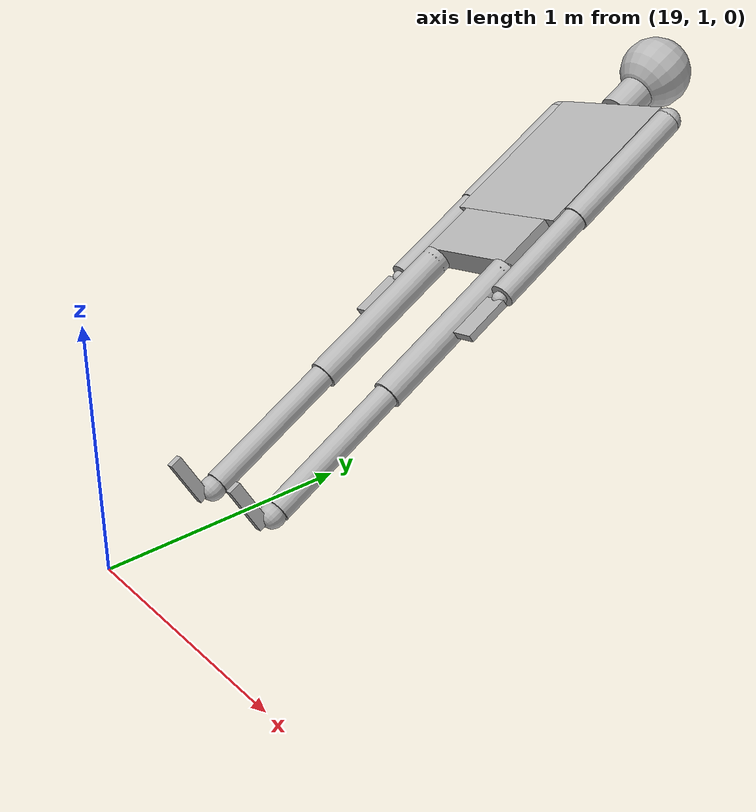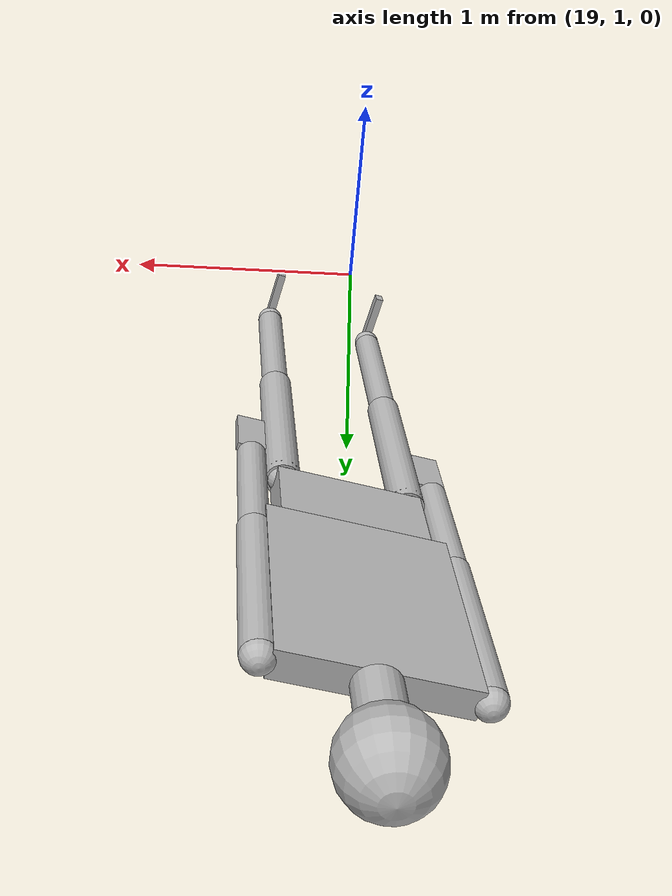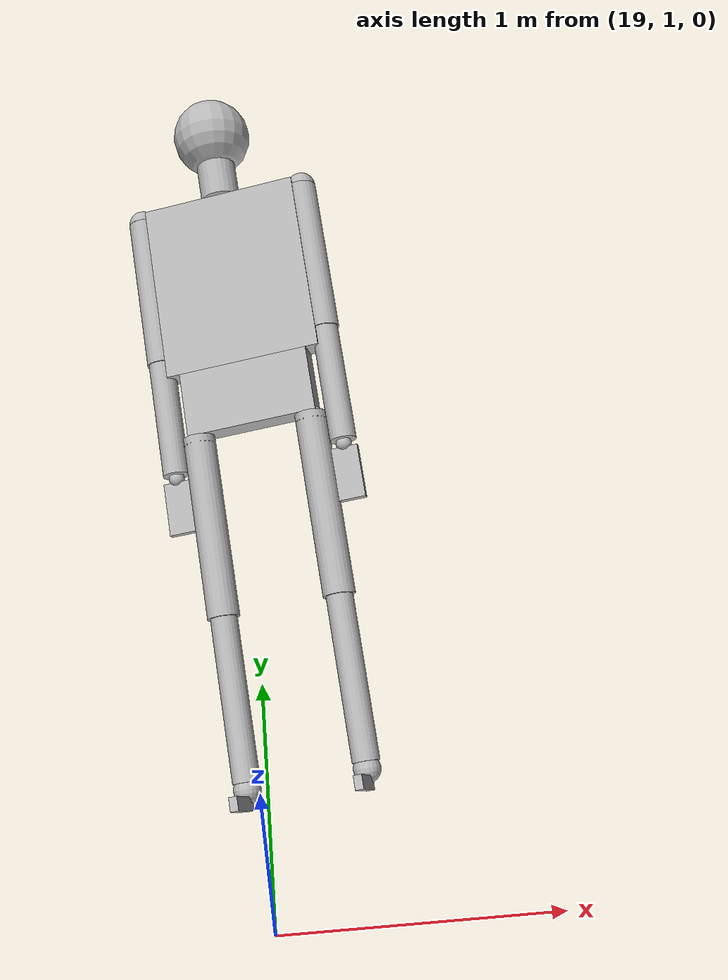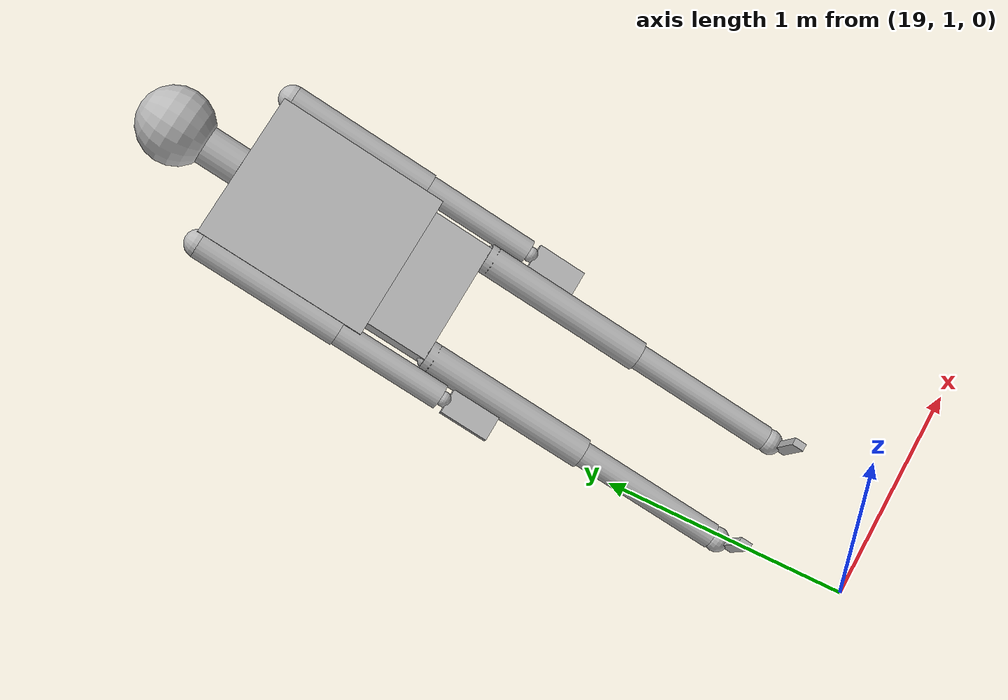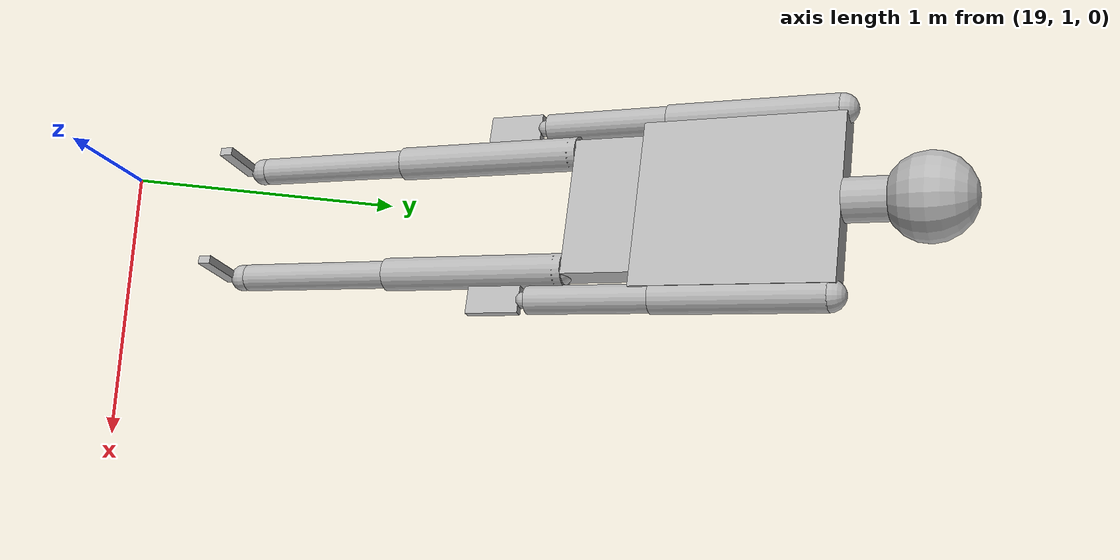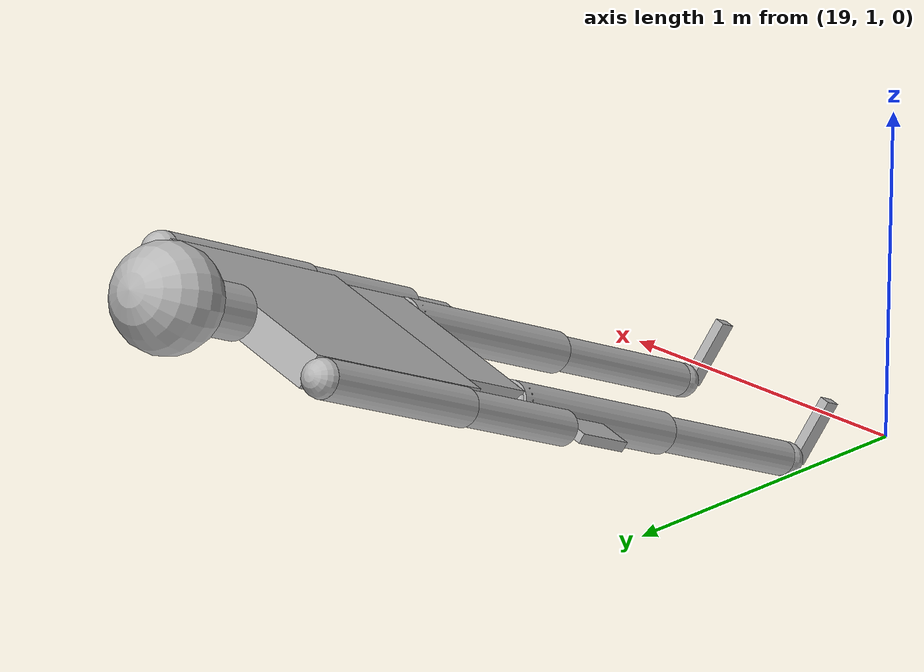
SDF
<sdf version="1.7">
 <world name="world_demo">
  <model name="ground_plane">
   <static>1</static>
   <link name="link">
    <collision name="collision">
     <geometry><plane><normal>0 0 1</normal><size>1 1</size></plane></geometry>
    </collision>
    <inertial>
     <mass>1</mass>
     <inertia><ixx>1</ixx><ixy>0</ixy><ixz>0</ixz><iyy>1</iyy><iyz>0</iyz><izz>1</izz></inertia>
    </inertial>
   </link>
  </model>
  <model name="ragdoll_1">
   <pose>19.0376 2.68653 0.724107 0.524953 -1.05567 -2.07111</pose>
   <link name="hip">
    <inertial>
     <inertia><ixx>0.1</ixx><ixy>0</ixy><ixz>0</ixz><iyy>0.1</iyy><iyz>0</iyz><izz>0.1</izz></inertia>
     <mass>10</mass>
    </inertial>
    <collision name="hip_geom">
     <pose>0 0 0.125 0 -0 0</pose>
     <geometry><box><size>0.1 0.5 0.25</size></box></geometry>
     <surface>
      <friction><ode><mu>-1</mu><mu2>-1</mu2><fdir1>0 0 0</fdir1><slip1>0</slip1><slip2>0</slip2></ode></friction>
      <bounce><restitution_coefficient>0</restitution_coefficient><threshold>100000</threshold></bounce>
      <contact>
       <ode>
        <soft_cfm>0</soft_cfm>
        <soft_erp>0.2</soft_erp>
        <kp>1e+12</kp>
        <kd>1</kd>
        <max_vel>0</max_vel>
        <min_depth>0.001</min_depth>
       </ode>
      </contact>
     </surface>
    </collision>
    <visual name="hip_geom_visual">
     <pose>0 0 0.125 0 -0 0</pose>
     <geometry><box><size>0.1 0.5 0.25</size></box></geometry>
    </visual>
    <gravity>0</gravity>
   </link>
   <link name="l_thigh_pan">
    <pose>0 0.22 0 0 -0 0</pose>
    <inertial>
     <inertia><ixx>0.01</ixx><ixy>0</ixy><ixz>0</ixz><iyy>0.01</iyy><iyz>0</iyz><izz>0.01</izz></inertia>
     <mass>1</mass>
    </inertial>
    <collision name="l_thigh_pan_geom">
     <pose>0 0 -0.03 0 -0 0</pose>
     <geometry><sphere><radius>0.06</radius></sphere></geometry>
     <surface>
      <friction><ode><mu>-1</mu><mu2>-1</mu2><fdir1>0 0 0</fdir1><slip1>0</slip1><slip2>0</slip2></ode></friction>
      <bounce><restitution_coefficient>0</restitution_coefficient><threshold>100000</threshold></bounce>
      <contact>
       <ode>
        <soft_cfm>0</soft_cfm>
        <soft_erp>0.2</soft_erp>
        <kp>1e+12</kp>
        <kd>1</kd>
        <max_vel>0</max_vel>
        <min_depth>0.001</min_depth>
       </ode>
      </contact>
     </surface>
    </collision>
    <visual name="l_thigh_pan_geom_visual">
     <pose>0 0 -0.03 0 -0 0</pose>
     <geometry><sphere><radius>0.06</radius></sphere></geometry>
    </visual>
    <gravity>0</gravity>
   </link>
   <link name="l_thigh_lift">
    <pose>0 0.22 0 0 -0 0</pose>
    <inertial>
     <inertia><ixx>0.05</ixx><ixy>0</ixy><ixz>0</ixz><iyy>0.05</iyy><iyz>0</iyz><izz>0.05</izz></inertia>
     <mass>5</mass>
    </inertial>
    <collision name="l_thigh_lift_geom">
     <pose>0 0 -0.35 0 -0 0</pose>
     <geometry><cylinder><radius>0.06</radius><length>0.7</length></cylinder></geometry>
     <surface>
      <friction><ode><mu>-1</mu><mu2>-1</mu2><fdir1>0 0 0</fdir1><slip1>0</slip1><slip2>0</slip2></ode></friction>
      <bounce><restitution_coefficient>0</restitution_coefficient><threshold>100000</threshold></bounce>
      <contact>
       <ode>
        <soft_cfm>0</soft_cfm>
        <soft_erp>0.2</soft_erp>
        <kp>1e+12</kp>
        <kd>1</kd>
        <max_vel>0</max_vel>
        <min_depth>0.001</min_depth>
       </ode>
      </contact>
     </surface>
    </collision>
    <visual name="l_thigh_lift_geom_visual">
     <pose>0 0 -0.35 0 -0 0</pose>
     <geometry><cylinder><radius>0.06</radius><length>0.7</length></cylinder></geometry>
    </visual>
    <gravity>0</gravity>
   </link>
   <link name="l_calf">
    <pose>0 0.22 -0.7 0 -0 0</pose>
    <inertial>
     <inertia><ixx>0.02</ixx><ixy>0</ixy><ixz>0</ixz><iyy>0.02</iyy><iyz>0</iyz><izz>0.02</izz></inertia>
     <mass>2</mass>
    </inertial>
    <collision name="l_calf_geom">
     <pose>0 0 -0.3 0 -0 0</pose>
     <geometry><cylinder><radius>0.05</radius><length>0.6</length></cylinder></geometry>
     <surface>
      <friction><ode><mu>-1</mu><mu2>-1</mu2><fdir1>0 0 0</fdir1><slip1>0</slip1><slip2>0</slip2></ode></friction>
      <bounce><restitution_coefficient>0</restitution_coefficient><threshold>100000</threshold></bounce>
      <contact>
       <ode>
        <soft_cfm>0</soft_cfm>
        <soft_erp>0.2</soft_erp>
        <kp>1e+12</kp>
        <kd>1</kd>
        <max_vel>0</max_vel>
        <min_depth>0.001</min_depth>
       </ode>
      </contact>
     </surface>
    </collision>
    <visual name="l_calf_geom_visual">
     <pose>0 0 -0.3 0 -0 0</pose>
     <geometry><cylinder><radius>0.05</radius><length>0.6</length></cylinder></geometry>
    </visual>
    <gravity>0</gravity>
   </link>
   <link name="l_ankle">
    <pose>0 0.22 -1.325 0 -0 0</pose>
    <inertial>
     <inertia><ixx>0.01</ixx><ixy>0</ixy><ixz>0</ixz><iyy>0.01</iyy><iyz>0</iyz><izz>0.01</izz></inertia>
     <mass>1</mass>
    </inertial>
    <collision name="l_ankle_geom">
     <geometry><sphere><radius>0.05</radius></sphere></geometry>
     <surface>
      <friction><ode><mu>-1</mu><mu2>-1</mu2><fdir1>0 0 0</fdir1><slip1>0</slip1><slip2>0</slip2></ode></friction>
      <bounce><restitution_coefficient>0</restitution_coefficient><threshold>100000</threshold></bounce>
      <contact>
       <ode>
        <soft_cfm>0</soft_cfm>
        <soft_erp>0.2</soft_erp>
        <kp>1e+12</kp>
        <kd>1</kd>
        <max_vel>0</max_vel>
        <min_depth>0.001</min_depth>
       </ode>
      </contact>
     </surface>
    </collision>
    <visual name="l_ankle_geom_visual"><geometry><sphere><radius>0.05</radius></sphere></geometry></visual>
    <gravity>0</gravity>
   </link>
   <link name="l_foot">
    <pose>0 0.22 -1.35 0 -0 0</pose>
    <inertial>
     <pose>0.1 0 0 0 -0 0</pose>
     <inertia><ixx>0.01</ixx><ixy>0</ixy><ixz>0</ixz><iyy>0.01</iyy><iyz>0</iyz><izz>0.01</izz></inertia>
     <mass>1</mass>
    </inertial>
    <collision name="l_foot_geom">
     <pose>0.1 0 -0.025 0 -0 0</pose>
     <geometry><box><size>0.2 0.03 0.05</size></box></geometry>
     <surface>
      <friction><ode><mu>-1</mu><mu2>-1</mu2><fdir1>0 0 0</fdir1><slip1>0</slip1><slip2>0</slip2></ode></friction>
      <bounce><restitution_coefficient>0</restitution_coefficient><threshold>100000</threshold></bounce>
      <contact>
       <ode>
        <soft_cfm>0</soft_cfm>
        <soft_erp>0.2</soft_erp>
        <kp>1e+12</kp>
        <kd>1</kd>
        <max_vel>0</max_vel>
        <min_depth>0.001</min_depth>
       </ode>
      </contact>
     </surface>
    </collision>
    <visual name="l_foot_geom_visual">
     <pose>0.1 0 -0.025 0 -0 0</pose>
     <geometry><box><size>0.2 0.03 0.05</size></box></geometry>
    </visual>
   </link>
   <link name="r_thigh_pan">
    <pose>0 -0.22 0 0 -0 0</pose>
    <inertial>
     <inertia><ixx>0.01</ixx><ixy>0</ixy><ixz>0</ixz><iyy>0.01</iyy><iyz>0</iyz><izz>0.01</izz></inertia>
     <mass>1</mass>
    </inertial>
    <collision name="r_thigh_pan_geom">
     <pose>0 0 -0.03 0 -0 0</pose>
     <geometry><sphere><radius>0.06</radius></sphere></geometry>
     <surface>
      <friction><ode><mu>-1</mu><mu2>-1</mu2><fdir1>0 0 0</fdir1><slip1>0</slip1><slip2>0</slip2></ode></friction>
      <bounce><restitution_coefficient>0</restitution_coefficient><threshold>100000</threshold></bounce>
      <contact>
       <ode>
        <soft_cfm>0</soft_cfm>
        <soft_erp>0.2</soft_erp>
        <kp>1e+12</kp>
        <kd>1</kd>
        <max_vel>0</max_vel>
        <min_depth>0.001</min_depth>
       </ode>
      </contact>
     </surface>
    </collision>
    <visual name="r_thigh_pan_geom_visual">
     <pose>0 0 -0.03 0 -0 0</pose>
     <geometry><sphere><radius>0.06</radius></sphere></geometry>
    </visual>
    <gravity>0</gravity>
   </link>
   <link name="r_thigh_lift">
    <pose>0 -0.22 0 0 -0 0</pose>
    <inertial>
     <inertia><ixx>0.05</ixx><ixy>0</ixy><ixz>0</ixz><iyy>0.05</iyy><iyz>0</iyz><izz>0.05</izz></inertia>
     <mass>5</mass>
    </inertial>
    <collision name="r_thigh_lift_geom">
     <pose>0 0 -0.35 0 -0 0</pose>
     <geometry><cylinder><radius>0.06</radius><length>0.7</length></cylinder></geometry>
     <surface>
      <friction><ode><mu>-1</mu><mu2>-1</mu2><fdir1>0 0 0</fdir1><slip1>0</slip1><slip2>0</slip2></ode></friction>
      <bounce><restitution_coefficient>0</restitution_coefficient><threshold>100000</threshold></bounce>
      <contact>
       <ode>
        <soft_cfm>0</soft_cfm>
        <soft_erp>0.2</soft_erp>
        <kp>1e+12</kp>
        <kd>1</kd>
        <max_vel>0</max_vel>
        <min_depth>0.001</min_depth>
       </ode>
      </contact>
     </surface>
    </collision>
    <visual name="r_thigh_lift_geom_visual">
     <pose>0 0 -0.35 0 -0 0</pose>
     <geometry><cylinder><radius>0.06</radius><length>0.7</length></cylinder></geometry>
    </visual>
    <gravity>0</gravity>
   </link>
   <link name="r_calf">
    <pose>0 -0.22 -0.7 0 -0 0</pose>
    <inertial>
     <inertia><ixx>0.02</ixx><ixy>0</ixy><ixz>0</ixz><iyy>0.02</iyy><iyz>0</iyz><izz>0.02</izz></inertia>
     <mass>2</mass>
    </inertial>
    <collision name="r_calf_geom">
     <pose>0 0 -0.3 0 -0 0</pose>
     <geometry><cylinder><radius>0.05</radius><length>0.6</length></cylinder></geometry>
     <surface>
      <friction><ode><mu>-1</mu><mu2>-1</mu2><fdir1>0 0 0</fdir1><slip1>0</slip1><slip2>0</slip2></ode></friction>
      <bounce><restitution_coefficient>0</restitution_coefficient><threshold>100000</threshold></bounce>
      <contact>
       <ode>
        <soft_cfm>0</soft_cfm>
        <soft_erp>0.2</soft_erp>
        <kp>1e+12</kp>
        <kd>1</kd>
        <max_vel>0</max_vel>
        <min_depth>0.001</min_depth>
       </ode>
      </contact>
     </surface>
    </collision>
    <visual name="r_calf_geom_visual">
     <pose>0 0 -0.3 0 -0 0</pose>
     <geometry><cylinder><radius>0.05</radius><length>0.6</length></cylinder></geometry>
    </visual>
    <gravity>0</gravity>
   </link>
   <link name="r_ankle">
    <pose>0 -0.22 -1.325 0 -0 0</pose>
    <inertial>
     <inertia><ixx>0.01</ixx><ixy>0</ixy><ixz>0</ixz><iyy>0.01</iyy><iyz>0</iyz><izz>0.01</izz></inertia>
     <mass>1</mass>
    </inertial>
    <collision name="r_ankle_geom">
     <geometry><sphere><radius>0.05</radius></sphere></geometry>
     <surface>
      <friction><ode><mu>-1</mu><mu2>-1</mu2><fdir1>0 0 0</fdir1><slip1>0</slip1><slip2>0</slip2></ode></friction>
      <bounce><restitution_coefficient>0</restitution_coefficient><threshold>100000</threshold></bounce>
      <contact>
       <ode>
        <soft_cfm>0</soft_cfm>
        <soft_erp>0.2</soft_erp>
        <kp>1e+12</kp>
        <kd>1</kd>
        <max_vel>0</max_vel>
        <min_depth>0.001</min_depth>
       </ode>
      </contact>
     </surface>
    </collision>
    <visual name="r_ankle_geom_visual"><geometry><sphere><radius>0.05</radius></sphere></geometry></visual>
    <gravity>0</gravity>
   </link>
   <link name="r_foot">
    <pose>0 -0.22 -1.35 0 -0 0</pose>
    <inertial>
     <pose>0.1 0 0 0 -0 0</pose>
     <inertia><ixx>0.01</ixx><ixy>0</ixy><ixz>0</ixz><iyy>0.01</iyy><iyz>0</iyz><izz>0.01</izz></inertia>
     <mass>1</mass>
    </inertial>
    <collision name="r_foot_geom">
     <pose>0.1 0 -0.025 0 -0 0</pose>
     <geometry><box><size>0.2 0.03 0.05</size></box></geometry>
     <surface>
      <friction><ode><mu>-1</mu><mu2>-1</mu2><fdir1>0 0 0</fdir1><slip1>0</slip1><slip2>0</slip2></ode></friction>
      <bounce><restitution_coefficient>0</restitution_coefficient><threshold>100000</threshold></bounce>
      <contact>
       <ode>
        <soft_cfm>0</soft_cfm>
        <soft_erp>0.2</soft_erp>
        <kp>1e+12</kp>
        <kd>1</kd>
        <max_vel>0</max_vel>
        <min_depth>0.001</min_depth>
       </ode>
      </contact>
     </surface>
    </collision>
    <visual name="r_foot_geom_visual">
     <pose>0.1 0 -0.025 0 -0 0</pose>
     <geometry><box><size>0.2 0.03 0.05</size></box></geometry>
    </visual>
   </link>
   <link name="torso">
    <pose>0 0 0.25 0 -0 0</pose>
    <inertial>
     <inertia><ixx>0.3</ixx><ixy>0</ixy><ixz>0</ixz><iyy>0.3</iyy><iyz>0</iyz><izz>0.3</izz></inertia>
     <mass>30</mass>
    </inertial>
    <collision name="torso_geom">
     <pose>0 0 0.35 0 -0 0</pose>
     <geometry><box><size>0.1 0.6 0.7</size></box></geometry>
     <surface>
      <friction><ode><mu>-1</mu><mu2>-1</mu2><fdir1>0 0 0</fdir1><slip1>0</slip1><slip2>0</slip2></ode></friction>
      <bounce><restitution_coefficient>0</restitution_coefficient><threshold>100000</threshold></bounce>
      <contact>
       <ode>
        <soft_cfm>0</soft_cfm>
        <soft_erp>0.2</soft_erp>
        <kp>1e+12</kp>
        <kd>1</kd>
        <max_vel>0</max_vel>
        <min_depth>0.001</min_depth>
       </ode>
      </contact>
     </surface>
    </collision>
    <visual name="torso_geom_visual">
     <pose>0 0 0.35 0 -0 0</pose>
     <geometry><box><size>0.1 0.6 0.7</size></box></geometry>
    </visual>
    <gravity>0</gravity>
   </link>
   <link name="l_shoulder">
    <pose>0 0.3275 0.9225 0 -0 0</pose>
    <inertial>
     <inertia><ixx>0.01</ixx><ixy>0</ixy><ixz>0</ixz><iyy>0.01</iyy><iyz>0</iyz><izz>0.01</izz></inertia>
     <mass>1</mass>
    </inertial>
    <collision name="l_shoulder_geom">
     <geometry><sphere><radius>0.055</radius></sphere></geometry>
     <surface>
      <friction><ode><mu>-1</mu><mu2>-1</mu2><fdir1>0 0 0</fdir1><slip1>0</slip1><slip2>0</slip2></ode></friction>
      <bounce><restitution_coefficient>0</restitution_coefficient><threshold>100000</threshold></bounce>
      <contact>
       <ode>
        <soft_cfm>0</soft_cfm>
        <soft_erp>0.2</soft_erp>
        <kp>1e+12</kp>
        <kd>1</kd>
        <max_vel>0</max_vel>
        <min_depth>0.001</min_depth>
       </ode>
      </contact>
     </surface>
    </collision>
    <visual name="l_shoulder_geom_visual"><geometry><sphere><radius>0.055</radius></sphere></geometry></visual>
    <gravity>0</gravity>
   </link>
   <link name="l_upper_arm">
    <pose>0 0.3275 0.9225 0 -0 0</pose>
    <inertial>
     <inertia><ixx>0.02</ixx><ixy>0</ixy><ixz>0</ixz><iyy>0.02</iyy><iyz>0</iyz><izz>0.02</izz></inertia>
     <mass>2</mass>
    </inertial>
    <collision name="l_upper_arm_geom">
     <pose>0 0 -0.3 0 -0 0</pose>
     <geometry><cylinder><radius>0.055</radius><length>0.6</length></cylinder></geometry>
     <surface>
      <friction><ode><mu>-1</mu><mu2>-1</mu2><fdir1>0 0 0</fdir1><slip1>0</slip1><slip2>0</slip2></ode></friction>
      <bounce><restitution_coefficient>0</restitution_coefficient><threshold>100000</threshold></bounce>
      <contact>
       <ode>
        <soft_cfm>0</soft_cfm>
        <soft_erp>0.2</soft_erp>
        <kp>1e+12</kp>
        <kd>1</kd>
        <max_vel>0</max_vel>
        <min_depth>0.001</min_depth>
       </ode>
      </contact>
     </surface>
    </collision>
    <visual name="l_upper_arm_geom_visual">
     <pose>0 0 -0.3 0 -0 0</pose>
     <geometry><cylinder><radius>0.055</radius><length>0.6</length></cylinder></geometry>
    </visual>
    <gravity>0</gravity>
   </link>
   <link name="l_forearm">
    <pose>0 0.3275 0.3225 0 -0 0</pose>
    <inertial>
     <inertia><ixx>0.01</ixx><ixy>0</ixy><ixz>0</ixz><iyy>0.01</iyy><iyz>0</iyz><izz>0.01</izz></inertia>
     <mass>1</mass>
    </inertial>
    <collision name="l_forearm_geom">
     <pose>0 0 -0.225 0 -0 0</pose>
     <geometry><cylinder><radius>0.05</radius><length>0.45</length></cylinder></geometry>
     <surface>
      <friction><ode><mu>-1</mu><mu2>-1</mu2><fdir1>0 0 0</fdir1><slip1>0</slip1><slip2>0</slip2></ode></friction>
      <bounce><restitution_coefficient>0</restitution_coefficient><threshold>100000</threshold></bounce>
      <contact>
       <ode>
        <soft_cfm>0</soft_cfm>
        <soft_erp>0.2</soft_erp>
        <kp>1e+12</kp>
        <kd>1</kd>
        <max_vel>0</max_vel>
        <min_depth>0.001</min_depth>
       </ode>
      </contact>
     </surface>
    </collision>
    <visual name="l_forearm_geom_visual">
     <pose>0 0 -0.225 0 -0 0</pose>
     <geometry><cylinder><radius>0.05</radius><length>0.45</length></cylinder></geometry>
    </visual>
    <gravity>0</gravity>
   </link>
   <link name="l_wrist">
    <pose>0 0.3275 -0.1425 0 -0 0</pose>
    <inertial>
     <inertia><ixx>0.01</ixx><ixy>0</ixy><ixz>0</ixz><iyy>0.01</iyy><iyz>0</iyz><izz>0.01</izz></inertia>
     <mass>1</mass>
    </inertial>
    <collision name="l_wrist_geom">
     <geometry><sphere><radius>0.03</radius></sphere></geometry>
     <surface>
      <friction><ode><mu>-1</mu><mu2>-1</mu2><fdir1>0 0 0</fdir1><slip1>0</slip1><slip2>0</slip2></ode></friction>
      <bounce><restitution_coefficient>0</restitution_coefficient><threshold>100000</threshold></bounce>
      <contact>
       <ode>
        <soft_cfm>0</soft_cfm>
        <soft_erp>0.2</soft_erp>
        <kp>1e+12</kp>
        <kd>1</kd>
        <max_vel>0</max_vel>
        <min_depth>0.001</min_depth>
       </ode>
      </contact>
     </surface>
    </collision>
    <visual name="l_wrist_geom_visual"><geometry><sphere><radius>0.03</radius></sphere></geometry></visual>
    <gravity>0</gravity>
   </link>
   <link name="l_hand">
    <pose>0 0.3275 -0.1575 0 -0 0</pose>
    <inertial>
     <inertia><ixx>0.01</ixx><ixy>0</ixy><ixz>0</ixz><iyy>0.01</iyy><iyz>0</iyz><izz>0.01</izz></inertia>
     <mass>1</mass>
    </inertial>
    <collision name="l_hand_geom">
     <pose>0 0 -0.1 0 -0 0</pose>
     <geometry><box><size>0.03 0.1 0.2</size></box></geometry>
     <surface>
      <friction><ode><mu>-1</mu><mu2>-1</mu2><fdir1>0 0 0</fdir1><slip1>0</slip1><slip2>0</slip2></ode></friction>
      <bounce><restitution_coefficient>0</restitution_coefficient><threshold>100000</threshold></bounce>
      <contact>
       <ode>
        <soft_cfm>0</soft_cfm>
        <soft_erp>0.2</soft_erp>
        <kp>1e+12</kp>
        <kd>1</kd>
        <max_vel>0</max_vel>
        <min_depth>0.001</min_depth>
       </ode>
      </contact>
     </surface>
    </collision>
    <visual name="l_hand_geom_visual">
     <pose>0 0 -0.1 0 -0 0</pose>
     <geometry><box><size>0.03 0.1 0.2</size></box></geometry>
    </visual>
    <gravity>0</gravity>
   </link>
   <link name="neck">
    <pose>0 0 0.95 0 -0 0</pose>
    <inertial>
     <inertia><ixx>0.01</ixx><ixy>0</ixy><ixz>0</ixz><iyy>0.01</iyy><iyz>0</iyz><izz>0.01</izz></inertia>
     <mass>1</mass>
    </inertial>
    <collision name="neck_geom">
     <pose>0 0 0.1 0 -0 0</pose>
     <geometry><cylinder><radius>0.075</radius><length>0.2</length></cylinder></geometry>
     <surface>
      <friction><ode><mu>-1</mu><mu2>-1</mu2><fdir1>0 0 0</fdir1><slip1>0</slip1><slip2>0</slip2></ode></friction>
      <bounce><restitution_coefficient>0</restitution_coefficient><threshold>100000</threshold></bounce>
      <contact>
       <ode>
        <soft_cfm>0</soft_cfm>
        <soft_erp>0.2</soft_erp>
        <kp>1e+12</kp>
        <kd>1</kd>
        <max_vel>0</max_vel>
        <min_depth>0.001</min_depth>
       </ode>
      </contact>
     </surface>
    </collision>
    <visual name="neck_geom_visual">
     <pose>0 0 0.1 0 -0 0</pose>
     <geometry><cylinder><radius>0.075</radius><length>0.2</length></cylinder></geometry>
    </visual>
    <gravity>0</gravity>
   </link>
   <link name="head">
    <pose>0 0 1.225 0 -0 0</pose>
    <inertial>
     <inertia><ixx>0.1</ixx><ixy>0</ixy><ixz>0</ixz><iyy>0.1</iyy><iyz>0</iyz><izz>0.1</izz></inertia>
     <mass>10</mass>
    </inertial>
    <collision name="head_geom">
     <geometry><sphere><radius>0.15</radius></sphere></geometry>
     <surface>
      <friction><ode><mu>-1</mu><mu2>-1</mu2><fdir1>0 0 0</fdir1><slip1>0</slip1><slip2>0</slip2></ode></friction>
      <bounce><restitution_coefficient>0</restitution_coefficient><threshold>100000</threshold></bounce>
      <contact>
       <ode>
        <soft_cfm>0</soft_cfm>
        <soft_erp>0.2</soft_erp>
        <kp>1e+12</kp>
        <kd>1</kd>
        <max_vel>0</max_vel>
        <min_depth>0.001</min_depth>
       </ode>
      </contact>
     </surface>
    </collision>
    <visual name="head_geom_visual"><geometry><sphere><radius>0.15</radius></sphere></geometry></visual>
    <gravity>0</gravity>
   </link>
   <link name="r_shoulder">
    <pose>0 -0.3275 0.9225 0 -0 0</pose>
    <inertial>
     <inertia><ixx>0.01</ixx><ixy>0</ixy><ixz>0</ixz><iyy>0.01</iyy><iyz>0</iyz><izz>0.01</izz></inertia>
     <mass>1</mass>
    </inertial>
    <collision name="r_shoulder_geom">
     <geometry><sphere><radius>0.055</radius></sphere></geometry>
     <surface>
      <friction><ode><mu>-1</mu><mu2>-1</mu2><fdir1>0 0 0</fdir1><slip1>0</slip1><slip2>0</slip2></ode></friction>
      <bounce><restitution_coefficient>0</restitution_coefficient><threshold>100000</threshold></bounce>
      <contact>
       <ode>
        <soft_cfm>0</soft_cfm>
        <soft_erp>0.2</soft_erp>
        <kp>1e+12</kp>
        <kd>1</kd>
        <max_vel>0</max_vel>
        <min_depth>0.001</min_depth>
       </ode>
      </contact>
     </surface>
    </collision>
    <visual name="r_shoulder_geom_visual"><geometry><sphere><radius>0.055</radius></sphere></geometry></visual>
    <gravity>0</gravity>
   </link>
   <link name="r_upper_arm">
    <pose>0 -0.3275 0.9225 0 -0 0</pose>
    <inertial>
     <inertia><ixx>0.02</ixx><ixy>0</ixy><ixz>0</ixz><iyy>0.02</iyy><iyz>0</iyz><izz>0.02</izz></inertia>
     <mass>2</mass>
    </inertial>
    <collision name="r_upper_arm_geom">
     <pose>0 0 -0.3 0 -0 0</pose>
     <geometry><cylinder><radius>0.055</radius><length>0.6</length></cylinder></geometry>
     <surface>
      <friction><ode><mu>-1</mu><mu2>-1</mu2><fdir1>0 0 0</fdir1><slip1>0</slip1><slip2>0</slip2></ode></friction>
      <bounce><restitution_coefficient>0</restitution_coefficient><threshold>100000</threshold></bounce>
      <contact>
       <ode>
        <soft_cfm>0</soft_cfm>
        <soft_erp>0.2</soft_erp>
        <kp>1e+12</kp>
        <kd>1</kd>
        <max_vel>0</max_vel>
        <min_depth>0.001</min_depth>
       </ode>
      </contact>
     </surface>
    </collision>
    <visual name="r_upper_arm_geom_visual">
     <pose>0 0 -0.3 0 -0 0</pose>
     <geometry><cylinder><radius>0.055</radius><length>0.6</length></cylinder></geometry>
    </visual>
    <gravity>0</gravity>
   </link>
   <link name="r_forearm">
    <pose>0 -0.3275 0.3225 0 -0 0</pose>
    <inertial>
     <inertia><ixx>0.01</ixx><ixy>0</ixy><ixz>0</ixz><iyy>0.01</iyy><iyz>0</iyz><izz>0.01</izz></inertia>
     <mass>1</mass>
    </inertial>
    <collision name="r_forearm_geom">
     <pose>0 0 -0.225 0 -0 0</pose>
     <geometry><cylinder><radius>0.05</radius><length>0.45</length></cylinder></geometry>
     <surface>
      <friction><ode><mu>-1</mu><mu2>-1</mu2><fdir1>0 0 0</fdir1><slip1>0</slip1><slip2>0</slip2></ode></friction>
      <bounce><restitution_coefficient>0</restitution_coefficient><threshold>100000</threshold></bounce>
      <contact>
       <ode>
        <soft_cfm>0</soft_cfm>
        <soft_erp>0.2</soft_erp>
        <kp>1e+12</kp>
        <kd>1</kd>
        <max_vel>0</max_vel>
        <min_depth>0.001</min_depth>
       </ode>
      </contact>
     </surface>
    </collision>
    <visual name="r_forearm_geom_visual">
     <pose>0 0 -0.225 0 -0 0</pose>
     <geometry><cylinder><radius>0.05</radius><length>0.45</length></cylinder></geometry>
    </visual>
    <gravity>0</gravity>
   </link>
   <link name="r_wrist">
    <pose>0 -0.3275 -0.1425 0 -0 0</pose>
    <inertial>
     <inertia><ixx>0.01</ixx><ixy>0</ixy><ixz>0</ixz><iyy>0.01</iyy><iyz>0</iyz><izz>0.01</izz></inertia>
     <mass>1</mass>
    </inertial>
    <collision name="r_wrist_geom">
     <geometry><sphere><radius>0.03</radius></sphere></geometry>
     <surface>
      <friction><ode><mu>-1</mu><mu2>-1</mu2><fdir1>0 0 0</fdir1><slip1>0</slip1><slip2>0</slip2></ode></friction>
      <bounce><restitution_coefficient>0</restitution_coefficient><threshold>100000</threshold></bounce>
      <contact>
       <ode>
        <soft_cfm>0</soft_cfm>
        <soft_erp>0.2</soft_erp>
        <kp>1e+12</kp>
        <kd>1</kd>
        <max_vel>0</max_vel>
        <min_depth>0.001</min_depth>
       </ode>
      </contact>
     </surface>
    </collision>
    <visual name="r_wrist_geom_visual"><geometry><sphere><radius>0.03</radius></sphere></geometry></visual>
    <gravity>0</gravity>
   </link>
   <link name="r_hand">
    <pose>0 -0.3275 -0.1575 0 -0 0</pose>
    <inertial>
     <inertia><ixx>0.01</ixx><ixy>0</ixy><ixz>0</ixz><iyy>0.01</iyy><iyz>0</iyz><izz>0.01</izz></inertia>
     <mass>1</mass>
    </inertial>
    <collision name="r_hand_geom">
     <pose>0 0 -0.1 0 -0 0</pose>
     <geometry><box><size>0.03 0.1 0.2</size></box></geometry>
     <surface>
      <friction><ode><mu>-1</mu><mu2>-1</mu2><fdir1>0 0 0</fdir1><slip1>0</slip1><slip2>0</slip2></ode></friction>
      <bounce><restitution_coefficient>0</restitution_coefficient><threshold>100000</threshold></bounce>
      <contact>
       <ode>
        <soft_cfm>0</soft_cfm>
        <soft_erp>0.2</soft_erp>
        <kp>1e+12</kp>
        <kd>1</kd>
        <max_vel>0</max_vel>
        <min_depth>0.001</min_depth>
       </ode>
      </contact>
     </surface>
    </collision>
    <visual name="r_hand_geom_visual">
     <pose>0 0 -0.1 0 -0 0</pose>
     <geometry><box><size>0.03 0.1 0.2</size></box></geometry>
    </visual>
    <gravity>0</gravity>
   </link>
   <joint name="l_thigh_pan_joint" type="revolute">
    <parent>hip</parent>
    <child>l_thigh_pan</child>
    <axis>
     <dynamics>
      <damping>0</damping>
      <friction>0</friction>
      <spring_reference>0</spring_reference>
      <spring_stiffness>0</spring_stiffness>
     </dynamics>
     <limit><lower>-1.5708</lower><upper>1.5708</upper><effort>0</effort><velocity>0</velocity></limit>
     <xyz expressed_in="__model__">0 0 1</xyz>
    </axis>
   </joint>
   <joint name="l_thigh_lift_joint" type="revolute">
    <parent>l_thigh_pan</parent>
    <child>l_thigh_lift</child>
    <axis>
     <dynamics>
      <damping>0</damping>
      <friction>0</friction>
      <spring_reference>0</spring_reference>
      <spring_stiffness>0</spring_stiffness>
     </dynamics>
     <limit><lower>-1.5708</lower><upper>1.5708</upper><effort>0</effort><velocity>0</velocity></limit>
     <xyz expressed_in="__model__">0 1 0</xyz>
    </axis>
   </joint>
   <joint name="l_calf_joint" type="revolute">
    <parent>l_thigh_lift</parent>
    <child>l_calf</child>
    <axis>
     <dynamics>
      <damping>0</damping>
      <friction>0</friction>
      <spring_reference>0</spring_reference>
      <spring_stiffness>0</spring_stiffness>
     </dynamics>
     <limit><lower>-1.5708</lower><upper>1.5708</upper><effort>0</effort><velocity>0</velocity></limit>
     <xyz expressed_in="__model__">0 1 0</xyz>
    </axis>
   </joint>
   <joint name="l_ankle_joint" type="revolute">
    <parent>l_calf</parent>
    <child>l_ankle</child>
    <axis>
     <dynamics>
      <damping>0</damping>
      <friction>0</friction>
      <spring_reference>0</spring_reference>
      <spring_stiffness>0</spring_stiffness>
     </dynamics>
     <limit><lower>-1.5708</lower><upper>1.5708</upper><effort>0</effort><velocity>0</velocity></limit>
     <xyz expressed_in="__model__">0 1 0</xyz>
    </axis>
   </joint>
   <joint name="l_foot_joint" type="revolute">
    <parent>l_ankle</parent>
    <child>l_foot</child>
    <axis>
     <dynamics>
      <damping>0</damping>
      <friction>0</friction>
      <spring_reference>0</spring_reference>
      <spring_stiffness>0</spring_stiffness>
     </dynamics>
     <limit><lower>-1.5708</lower><upper>1.5708</upper><effort>0</effort><velocity>0</velocity></limit>
     <xyz expressed_in="__model__">1 0 0</xyz>
    </axis>
   </joint>
   <joint name="r_thigh_pan_joint" type="revolute">
    <parent>hip</parent>
    <child>r_thigh_pan</child>
    <axis>
     <dynamics>
      <damping>0</damping>
      <friction>0</friction>
      <spring_reference>0</spring_reference>
      <spring_stiffness>0</spring_stiffness>
     </dynamics>
     <limit><lower>-1.5708</lower><upper>1.5708</upper><effort>0</effort><velocity>0</velocity></limit>
     <xyz expressed_in="__model__">0 0 1</xyz>
    </axis>
   </joint>
   <joint name="r_thigh_lift_joint" type="revolute">
    <parent>r_thigh_pan</parent>
    <child>r_thigh_lift</child>
    <axis>
     <dynamics>
      <damping>0</damping>
      <friction>0</friction>
      <spring_reference>0</spring_reference>
      <spring_stiffness>0</spring_stiffness>
     </dynamics>
     <limit><lower>-1.5708</lower><upper>1.5708</upper><effort>0</effort><velocity>0</velocity></limit>
     <xyz expressed_in="__model__">0 1 0</xyz>
    </axis>
   </joint>
   <joint name="r_calf_joint" type="revolute">
    <parent>r_thigh_lift</parent>
    <child>r_calf</child>
    <axis>
     <dynamics>
      <damping>0</damping>
      <friction>0</friction>
      <spring_reference>0</spring_reference>
      <spring_stiffness>0</spring_stiffness>
     </dynamics>
     <limit><lower>-1.5708</lower><upper>1.5708</upper><effort>0</effort><velocity>0</velocity></limit>
     <xyz expressed_in="__model__">0 1 0</xyz>
    </axis>
   </joint>
   <joint name="r_ankle_joint" type="revolute">
    <parent>r_calf</parent>
    <child>r_ankle</child>
    <axis>
     <dynamics>
      <damping>0</damping>
      <friction>0</friction>
      <spring_reference>0</spring_reference>
      <spring_stiffness>0</spring_stiffness>
     </dynamics>
     <limit><lower>-1.5708</lower><upper>1.5708</upper><effort>0</effort><velocity>0</velocity></limit>
     <xyz expressed_in="__model__">0 1 0</xyz>
    </axis>
   </joint>
   <joint name="r_foot_joint" type="revolute">
    <parent>r_ankle</parent>
    <child>r_foot</child>
    <axis>
     <dynamics>
      <damping>0</damping>
      <friction>0</friction>
      <spring_reference>0</spring_reference>
      <spring_stiffness>0</spring_stiffness>
     </dynamics>
     <limit><lower>-1.5708</lower><upper>1.5708</upper><effort>0</effort><velocity>0</velocity></limit>
     <xyz expressed_in="__model__">1 0 0</xyz>
    </axis>
   </joint>
   <joint name="torso_joint" type="revolute">
    <parent>hip</parent>
    <child>torso</child>
    <axis>
     <dynamics>
      <damping>0</damping>
      <friction>0</friction>
      <spring_reference>0</spring_reference>
      <spring_stiffness>0</spring_stiffness>
     </dynamics>
     <limit><lower>-1.5708</lower><upper>1.5708</upper><effort>0</effort><velocity>0</velocity></limit>
     <xyz expressed_in="__model__">0 1 0</xyz>
    </axis>
   </joint>
   <joint name="l_shoulder_joint" type="revolute">
    <parent>torso</parent>
    <child>l_shoulder</child>
    <axis>
     <dynamics>
      <damping>0</damping>
      <friction>0</friction>
      <spring_reference>0</spring_reference>
      <spring_stiffness>0</spring_stiffness>
     </dynamics>
     <limit><lower>-1.5708</lower><upper>1.5708</upper><effort>0</effort><velocity>0</velocity></limit>
     <xyz expressed_in="__model__">1 0 0</xyz>
    </axis>
   </joint>
   <joint name="l_upper_arm_joint" type="revolute">
    <parent>l_shoulder</parent>
    <child>l_upper_arm</child>
    <axis>
     <dynamics>
      <damping>0</damping>
      <friction>0</friction>
      <spring_reference>0</spring_reference>
      <spring_stiffness>0</spring_stiffness>
     </dynamics>
     <limit><lower>-1.5708</lower><upper>1.5708</upper><effort>0</effort><velocity>0</velocity></limit>
     <xyz expressed_in="__model__">0 1 0</xyz>
    </axis>
   </joint>
   <joint name="l_forearm_joint" type="revolute">
    <parent>l_upper_arm</parent>
    <child>l_forearm</child>
    <axis>
     <dynamics>
      <damping>0</damping>
      <friction>0</friction>
      <spring_reference>0</spring_reference>
      <spring_stiffness>0</spring_stiffness>
     </dynamics>
     <limit><lower>-1.5708</lower><upper>1.5708</upper><effort>0</effort><velocity>0</velocity></limit>
     <xyz expressed_in="__model__">0 1 0</xyz>
    </axis>
   </joint>
   <joint name="l_wrist_joint" type="revolute">
    <parent>l_forearm</parent>
    <child>l_wrist</child>
    <axis>
     <dynamics>
      <damping>0</damping>
      <friction>0</friction>
      <spring_reference>0</spring_reference>
      <spring_stiffness>0</spring_stiffness>
     </dynamics>
     <limit><lower>-1.5708</lower><upper>1.5708</upper><effort>0</effort><velocity>0</velocity></limit>
     <xyz expressed_in="__model__">0 1 0</xyz>
    </axis>
   </joint>
   <joint name="l_hand_joint" type="revolute">
    <parent>l_wrist</parent>
    <child>l_hand</child>
    <axis>
     <dynamics>
      <damping>0</damping>
      <friction>0</friction>
      <spring_reference>0</spring_reference>
      <spring_stiffness>0</spring_stiffness>
     </dynamics>
     <limit><lower>-1.5708</lower><upper>1.5708</upper><effort>0</effort><velocity>0</velocity></limit>
     <xyz expressed_in="__model__">0 1 0</xyz>
    </axis>
   </joint>
   <joint name="neck_joint" type="revolute">
    <parent>torso</parent>
    <child>neck</child>
    <axis>
     <dynamics>
      <damping>0</damping>
      <friction>0</friction>
      <spring_reference>0</spring_reference>
      <spring_stiffness>0</spring_stiffness>
     </dynamics>
     <limit><lower>-1.5708</lower><upper>1.5708</upper><effort>0</effort><velocity>0</velocity></limit>
     <xyz expressed_in="__model__">0 0 1</xyz>
    </axis>
   </joint>
   <joint name="head_joint" type="revolute">
    <parent>neck</parent>
    <child>head</child>
    <axis>
     <dynamics>
      <damping>0</damping>
      <friction>0</friction>
      <spring_reference>0</spring_reference>
      <spring_stiffness>0</spring_stiffness>
     </dynamics>
     <limit><lower>-1.5708</lower><upper>1.5708</upper><effort>0</effort><velocity>0</velocity></limit>
     <xyz expressed_in="__model__">0 1 0</xyz>
    </axis>
   </joint>
   <joint name="r_shoulder_joint" type="revolute">
    <parent>torso</parent>
    <child>r_shoulder</child>
    <axis>
     <dynamics>
      <damping>0</damping>
      <friction>0</friction>
      <spring_reference>0</spring_reference>
      <spring_stiffness>0</spring_stiffness>
     </dynamics>
     <limit><lower>-1.5708</lower><upper>1.5708</upper><effort>0</effort><velocity>0</velocity></limit>
     <xyz expressed_in="__model__">1 0 0</xyz>
    </axis>
   </joint>
   <joint name="r_upper_arm_joint" type="revolute">
    <parent>r_shoulder</parent>
    <child>r_upper_arm</child>
    <axis>
     <dynamics>
      <damping>0</damping>
      <friction>0</friction>
      <spring_reference>0</spring_reference>
      <spring_stiffness>0</spring_stiffness>
     </dynamics>
     <limit><lower>-1.5708</lower><upper>1.5708</upper><effort>0</effort><velocity>0</velocity></limit>
     <xyz expressed_in="__model__">0 1 0</xyz>
    </axis>
   </joint>
   <joint name="r_forearm_joint" type="revolute">
    <parent>r_upper_arm</parent>
    <child>r_forearm</child>
    <axis>
     <dynamics>
      <damping>0</damping>
      <friction>0</friction>
      <spring_reference>0</spring_reference>
      <spring_stiffness>0</spring_stiffness>
     </dynamics>
     <limit><lower>-1.5708</lower><upper>1.5708</upper><effort>0</effort><velocity>0</velocity></limit>
     <xyz expressed_in="__model__">0 1 0</xyz>
    </axis>
   </joint>
   <joint name="r_wrist_joint" type="revolute">
    <parent>r_forearm</parent>
    <child>r_wrist</child>
    <axis>
     <dynamics>
      <damping>0</damping>
      <friction>0</friction>
      <spring_reference>0</spring_reference>
      <spring_stiffness>0</spring_stiffness>
     </dynamics>
     <limit><lower>-1.5708</lower><upper>1.5708</upper><effort>0</effort><velocity>0</velocity></limit>
     <xyz expressed_in="__model__">0 1 0</xyz>
    </axis>
   </joint>
   <joint name="r_hand_joint" type="revolute">
    <parent>r_wrist</parent>
    <child>r_hand</child>
    <axis>
     <dynamics>
      <damping>0</damping>
      <friction>0</friction>
      <spring_reference>0</spring_reference>
      <spring_stiffness>0</spring_stiffness>
     </dynamics>
     <limit><lower>-1.5708</lower><upper>1.5708</upper><effort>0</effort><velocity>0</velocity></limit>
     <xyz expressed_in="__model__">0 1 0</xyz>
    </axis>
   </joint>
   <static>0</static>
  </model>
 </world>
</sdf>
